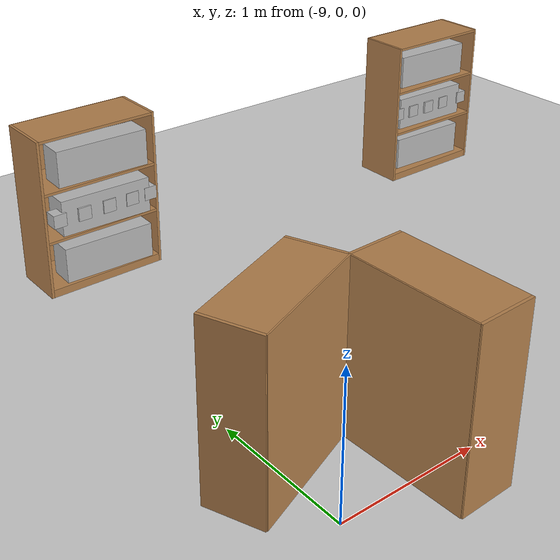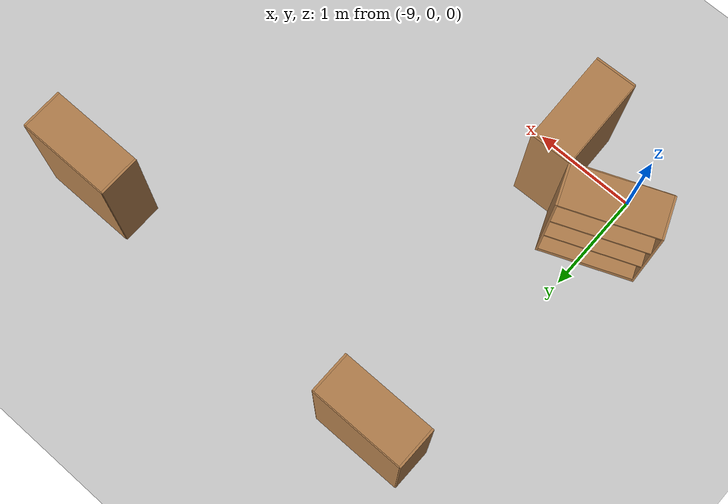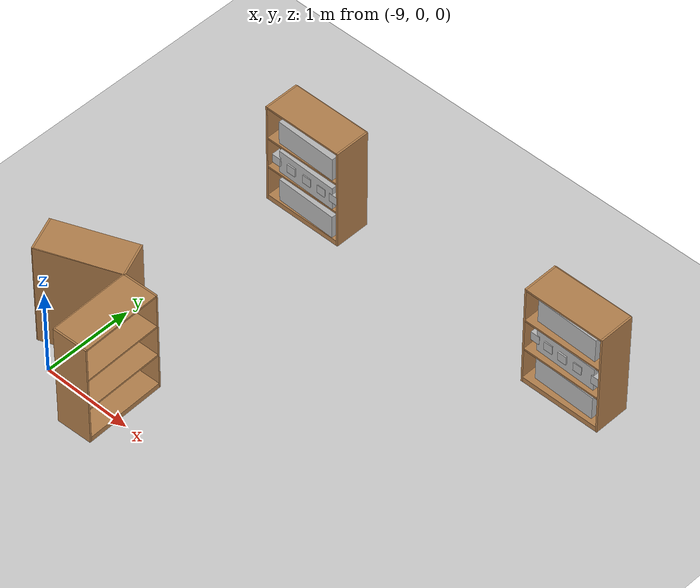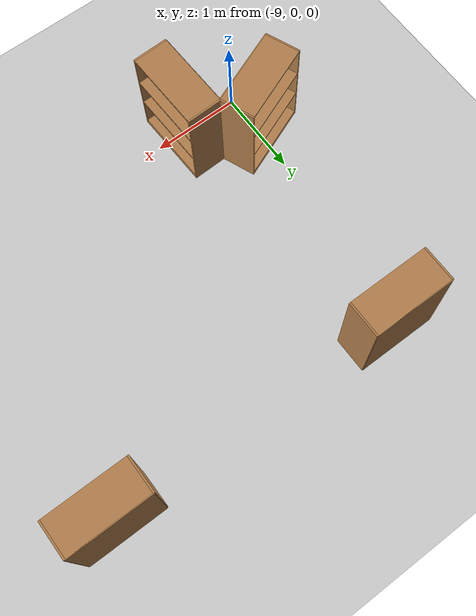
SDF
<sdf version="1.7">
 <world name="default">
  <model name="ground_plane">
   <static>1</static>
   <link name="link">
    <collision name="collision">
     <geometry><plane><normal>0 0 1</normal><size>100 100</size></plane></geometry>
     <surface><friction><ode><mu>100</mu><mu2>50</mu2></ode></friction></surface>
    </collision>
    <visual name="visual">
     <cast_shadows>0</cast_shadows>
     <geometry><plane><normal>0 0 1</normal><size>100 100</size></plane></geometry>
     <material>
      <script><uri>file://media/materials/scripts/gazebo.material</uri><name>Gazebo/Grey</name></script>
     </material>
    </visual>
   </link>
  </model>
  <model name="bookshelf_0">
   <static>1</static>
   <link name="link">
    <inertial><mass>1</mass></inertial>
    <collision name="back">
     <pose>0 0.005 0.6 0 -0 0</pose>
     <geometry><box><size>0.9 0.01 1.2</size></box></geometry>
    </collision>
    <visual name="visual1">
     <pose>0 0.005 0.6 0 -0 0</pose>
     <geometry><box><size>0.9 0.01 1.2</size></box></geometry>
     <material>
      <script><uri>file://media/materials/scripts/gazebo.material</uri><name>Gazebo/Wood</name></script>
     </material>
    </visual>
    <collision name="left_side">
     <pose>0.45 -0.195 0.6 0 -0 0</pose>
     <geometry><box><size>0.02 0.4 1.2</size></box></geometry>
    </collision>
    <visual name="visual2">
     <pose>0.45 -0.195 0.6 0 -0 0</pose>
     <geometry><box><size>0.02 0.4 1.2</size></box></geometry>
     <material>
      <script><uri>file://media/materials/scripts/gazebo.material</uri><name>Gazebo/Wood</name></script>
     </material>
    </visual>
    <collision name="right_side">
     <pose>-0.45 -0.195 0.6 0 -0 0</pose>
     <geometry><box><size>0.02 0.4 1.2</size></box></geometry>
    </collision>
    <visual name="visual3">
     <pose>-0.45 -0.195 0.6 0 -0 0</pose>
     <geometry><box><size>0.02 0.4 1.2</size></box></geometry>
     <material>
      <script><uri>file://media/materials/scripts/gazebo.material</uri><name>Gazebo/Wood</name></script>
     </material>
    </visual>
    <collision name="bottom">
     <pose>0 -0.195 0.03 0 -0 0</pose>
     <geometry><box><size>0.88 0.4 0.06</size></box></geometry>
    </collision>
    <visual name="visual4">
     <pose>0 -0.195 0.03 0 -0 0</pose>
     <geometry><box><size>0.88 0.4 0.06</size></box></geometry>
     <material>
      <script><uri>file://media/materials/scripts/gazebo.material</uri><name>Gazebo/Wood</name></script>
     </material>
    </visual>
    <collision name="top">
     <pose>0 -0.195 1.19 0 -0 0</pose>
     <geometry><box><size>0.88 0.4 0.02</size></box></geometry>
    </collision>
    <visual name="visual5">
     <pose>0 -0.195 1.19 0 -0 0</pose>
     <geometry><box><size>0.88 0.4 0.02</size></box></geometry>
     <material>
      <script><uri>file://media/materials/scripts/gazebo.material</uri><name>Gazebo/Wood</name></script>
     </material>
    </visual>
    <collision name="low_shelf">
     <pose>0 -0.195 0.43 0 -0 0</pose>
     <geometry><box><size>0.88 0.4 0.02</size></box></geometry>
    </collision>
    <visual name="visual6">
     <pose>0 -0.195 0.43 0 -0 0</pose>
     <geometry><box><size>0.88 0.4 0.02</size></box></geometry>
     <material>
      <script><uri>file://media/materials/scripts/gazebo.material</uri><name>Gazebo/Wood</name></script>
     </material>
    </visual>
    <collision name="high_shelf">
     <pose>0 -0.195 0.8 0 -0 0</pose>
     <geometry><box><size>0.88 0.4 0.02</size></box></geometry>
    </collision>
    <visual name="visual7">
     <pose>0 -0.195 0.8 0 -0 0</pose>
     <geometry><box><size>0.88 0.4 0.02</size></box></geometry>
     <material>
      <script><uri>file://media/materials/scripts/gazebo.material</uri><name>Gazebo/Wood</name></script>
     </material>
    </visual>
   </link>
   <pose>-8.64596 3.34342 0 0 -0 0</pose>
  </model>
  <model name="bookshelf_0_clone">
   <static>1</static>
   <link name="link">
    <inertial><mass>1</mass></inertial>
    <collision name="back">
     <pose>0 0.005 0.6 0 -0 0</pose>
     <geometry><box><size>0.9 0.01 1.2</size></box></geometry>
    </collision>
    <visual name="visual1">
     <pose>0 0.005 0.6 0 -0 0</pose>
     <geometry><box><size>0.9 0.01 1.2</size></box></geometry>
     <material>
      <script><uri>file://media/materials/scripts/gazebo.material</uri><name>Gazebo/Wood</name></script>
     </material>
    </visual>
    <collision name="left_side">
     <pose>0.45 -0.195 0.6 0 -0 0</pose>
     <geometry><box><size>0.02 0.4 1.2</size></box></geometry>
    </collision>
    <visual name="visual2">
     <pose>0.45 -0.195 0.6 0 -0 0</pose>
     <geometry><box><size>0.02 0.4 1.2</size></box></geometry>
     <material>
      <script><uri>file://media/materials/scripts/gazebo.material</uri><name>Gazebo/Wood</name></script>
     </material>
    </visual>
    <collision name="right_side">
     <pose>-0.45 -0.195 0.6 0 -0 0</pose>
     <geometry><box><size>0.02 0.4 1.2</size></box></geometry>
    </collision>
    <visual name="visual3">
     <pose>-0.45 -0.195 0.6 0 -0 0</pose>
     <geometry><box><size>0.02 0.4 1.2</size></box></geometry>
     <material>
      <script><uri>file://media/materials/scripts/gazebo.material</uri><name>Gazebo/Wood</name></script>
     </material>
    </visual>
    <collision name="bottom">
     <pose>0 -0.195 0.03 0 -0 0</pose>
     <geometry><box><size>0.88 0.4 0.06</size></box></geometry>
    </collision>
    <visual name="visual4">
     <pose>0 -0.195 0.03 0 -0 0</pose>
     <geometry><box><size>0.88 0.4 0.06</size></box></geometry>
     <material>
      <script><uri>file://media/materials/scripts/gazebo.material</uri><name>Gazebo/Wood</name></script>
     </material>
    </visual>
    <collision name="top">
     <pose>0 -0.195 1.19 0 -0 0</pose>
     <geometry><box><size>0.88 0.4 0.02</size></box></geometry>
    </collision>
    <visual name="visual5">
     <pose>0 -0.195 1.19 0 -0 0</pose>
     <geometry><box><size>0.88 0.4 0.02</size></box></geometry>
     <material>
      <script><uri>file://media/materials/scripts/gazebo.material</uri><name>Gazebo/Wood</name></script>
     </material>
    </visual>
    <collision name="low_shelf">
     <pose>0 -0.195 0.43 0 -0 0</pose>
     <geometry><box><size>0.88 0.4 0.02</size></box></geometry>
    </collision>
    <visual name="visual6">
     <pose>0 -0.195 0.43 0 -0 0</pose>
     <geometry><box><size>0.88 0.4 0.02</size></box></geometry>
     <material>
      <script><uri>file://media/materials/scripts/gazebo.material</uri><name>Gazebo/Wood</name></script>
     </material>
    </visual>
    <collision name="high_shelf">
     <pose>0 -0.195 0.8 0 -0 0</pose>
     <geometry><box><size>0.88 0.4 0.02</size></box></geometry>
    </collision>
    <visual name="visual7">
     <pose>0 -0.195 0.8 0 -0 0</pose>
     <geometry><box><size>0.88 0.4 0.02</size></box></geometry>
     <material>
      <script><uri>file://media/materials/scripts/gazebo.material</uri><name>Gazebo/Wood</name></script>
     </material>
    </visual>
   </link>
   <pose>-5.35741 3.26655 0 0 -0 0</pose>
  </model>
  <model name="bookshelf_clone_clone_clone_1_clone_0_clone_2">
   <static>1</static>
   <link name="link">
    <inertial><mass>1</mass></inertial>
    <collision name="back">
     <pose>0 0.005 0.6 0 -0 0</pose>
     <geometry><box><size>0.9 0.01 1.2</size></box></geometry>
    </collision>
    <visual name="visual1">
     <pose>0 0.005 0.6 0 -0 0</pose>
     <geometry><box><size>0.9 0.01 1.2</size></box></geometry>
     <material>
      <script><uri>file://media/materials/scripts/gazebo.material</uri><name>Gazebo/Wood</name></script>
     </material>
    </visual>
    <collision name="left_side">
     <pose>0.45 -0.195 0.6 0 -0 0</pose>
     <geometry><box><size>0.02 0.4 1.2</size></box></geometry>
    </collision>
    <visual name="visual2">
     <pose>0.45 -0.195 0.6 0 -0 0</pose>
     <geometry><box><size>0.02 0.4 1.2</size></box></geometry>
     <material>
      <script><uri>file://media/materials/scripts/gazebo.material</uri><name>Gazebo/Wood</name></script>
     </material>
    </visual>
    <collision name="right_side">
     <pose>-0.45 -0.195 0.6 0 -0 0</pose>
     <geometry><box><size>0.02 0.4 1.2</size></box></geometry>
    </collision>
    <visual name="visual3">
     <pose>-0.45 -0.195 0.6 0 -0 0</pose>
     <geometry><box><size>0.02 0.4 1.2</size></box></geometry>
     <material>
      <script><uri>file://media/materials/scripts/gazebo.material</uri><name>Gazebo/Wood</name></script>
     </material>
    </visual>
    <collision name="bottom">
     <pose>0 -0.195 0.03 0 -0 0</pose>
     <geometry><box><size>0.88 0.4 0.06</size></box></geometry>
    </collision>
    <visual name="visual4">
     <pose>0 -0.195 0.03 0 -0 0</pose>
     <geometry><box><size>0.88 0.4 0.06</size></box></geometry>
     <material>
      <script><uri>file://media/materials/scripts/gazebo.material</uri><name>Gazebo/Wood</name></script>
     </material>
    </visual>
    <collision name="top">
     <pose>0 -0.195 1.19 0 -0 0</pose>
     <geometry><box><size>0.88 0.4 0.02</size></box></geometry>
    </collision>
    <visual name="visual5">
     <pose>0 -0.195 1.19 0 -0 0</pose>
     <geometry><box><size>0.88 0.4 0.02</size></box></geometry>
     <material>
      <script><uri>file://media/materials/scripts/gazebo.material</uri><name>Gazebo/Wood</name></script>
     </material>
    </visual>
    <collision name="low_shelf">
     <pose>0 -0.195 0.43 0 -0 0</pose>
     <geometry><box><size>0.88 0.4 0.02</size></box></geometry>
    </collision>
    <visual name="visual6">
     <pose>0 -0.195 0.43 0 -0 0</pose>
     <geometry><box><size>0.88 0.4 0.02</size></box></geometry>
     <material>
      <script><uri>file://media/materials/scripts/gazebo.material</uri><name>Gazebo/Wood</name></script>
     </material>
    </visual>
    <collision name="high_shelf">
     <pose>0 -0.195 0.8 0 -0 0</pose>
     <geometry><box><size>0.88 0.4 0.02</size></box></geometry>
    </collision>
    <visual name="visual7">
     <pose>0 -0.195 0.8 0 -0 0</pose>
     <geometry><box><size>0.88 0.4 0.02</size></box></geometry>
     <material>
      <script><uri>file://media/materials/scripts/gazebo.material</uri><name>Gazebo/Wood</name></script>
     </material>
    </visual>
   </link>
   <pose>-8.49326 0.08209 0.012624 0 -0 1.60042</pose>
  </model>
  <model name="bookshelf_clone_clone_clone_1_clone_0_clone_3">
   <static>1</static>
   <link name="link">
    <inertial><mass>1</mass></inertial>
    <collision name="back">
     <pose>0 0.005 0.6 0 -0 0</pose>
     <geometry><box><size>0.9 0.01 1.2</size></box></geometry>
    </collision>
    <visual name="visual1">
     <pose>0 0.005 0.6 0 -0 0</pose>
     <geometry><box><size>0.9 0.01 1.2</size></box></geometry>
     <material>
      <script><uri>file://media/materials/scripts/gazebo.material</uri><name>Gazebo/Wood</name></script>
     </material>
    </visual>
    <collision name="left_side">
     <pose>0.45 -0.195 0.6 0 -0 0</pose>
     <geometry><box><size>0.02 0.4 1.2</size></box></geometry>
    </collision>
    <visual name="visual2">
     <pose>0.45 -0.195 0.6 0 -0 0</pose>
     <geometry><box><size>0.02 0.4 1.2</size></box></geometry>
     <material>
      <script><uri>file://media/materials/scripts/gazebo.material</uri><name>Gazebo/Wood</name></script>
     </material>
    </visual>
    <collision name="right_side">
     <pose>-0.45 -0.195 0.6 0 -0 0</pose>
     <geometry><box><size>0.02 0.4 1.2</size></box></geometry>
    </collision>
    <visual name="visual3">
     <pose>-0.45 -0.195 0.6 0 -0 0</pose>
     <geometry><box><size>0.02 0.4 1.2</size></box></geometry>
     <material>
      <script><uri>file://media/materials/scripts/gazebo.material</uri><name>Gazebo/Wood</name></script>
     </material>
    </visual>
    <collision name="bottom">
     <pose>0 -0.195 0.03 0 -0 0</pose>
     <geometry><box><size>0.88 0.4 0.06</size></box></geometry>
    </collision>
    <visual name="visual4">
     <pose>0 -0.195 0.03 0 -0 0</pose>
     <geometry><box><size>0.88 0.4 0.06</size></box></geometry>
     <material>
      <script><uri>file://media/materials/scripts/gazebo.material</uri><name>Gazebo/Wood</name></script>
     </material>
    </visual>
    <collision name="top">
     <pose>0 -0.195 1.19 0 -0 0</pose>
     <geometry><box><size>0.88 0.4 0.02</size></box></geometry>
    </collision>
    <visual name="visual5">
     <pose>0 -0.195 1.19 0 -0 0</pose>
     <geometry><box><size>0.88 0.4 0.02</size></box></geometry>
     <material>
      <script><uri>file://media/materials/scripts/gazebo.material</uri><name>Gazebo/Wood</name></script>
     </material>
    </visual>
    <collision name="low_shelf">
     <pose>0 -0.195 0.43 0 -0 0</pose>
     <geometry><box><size>0.88 0.4 0.02</size></box></geometry>
    </collision>
    <visual name="visual6">
     <pose>0 -0.195 0.43 0 -0 0</pose>
     <geometry><box><size>0.88 0.4 0.02</size></box></geometry>
     <material>
      <script><uri>file://media/materials/scripts/gazebo.material</uri><name>Gazebo/Wood</name></script>
     </material>
    </visual>
    <collision name="high_shelf">
     <pose>0 -0.195 0.8 0 -0 0</pose>
     <geometry><box><size>0.88 0.4 0.02</size></box></geometry>
    </collision>
    <visual name="visual7">
     <pose>0 -0.195 0.8 0 -0 0</pose>
     <geometry><box><size>0.88 0.4 0.02</size></box></geometry>
     <material>
      <script><uri>file://media/materials/scripts/gazebo.material</uri><name>Gazebo/Wood</name></script>
     </material>
    </visual>
   </link>
   <pose>-8.92253 0.361108 0.012624 0 0 -2.75538</pose>
  </model>
  <model name="book1.xacro">
   <link name="base_footprint">
    <inertial>
     <pose>1 1 1.5 0 -0 0</pose>
     <mass>6</mass>
     <inertia><ixx>0.7503</ixx><ixy>0</ixy><ixz>0</ixz><iyy>0.7503</iyy><iyz>0</iyz><izz>0.003</izz></inertia>
    </inertial>
    <collision name="base_footprint_fixed_joint_lump__base_link_collision">
     <pose>1 1 1 0 -0 0</pose>
     <geometry><box><size>0.7 0.2 0.27</size></box></geometry>
    </collision>
    <collision name="base_footprint_fixed_joint_lump__book_link_2_collision_1">
     <pose>1 1 1.375 0 -0 0</pose>
     <geometry><box><size>0.7 0.2 0.27</size></box></geometry>
    </collision>
    <collision name="base_footprint_fixed_joint_lump__book_link_3_collision_2">
     <pose>1 1 1.75 0 -0 0</pose>
     <geometry><box><size>0.7 0.2 0.27</size></box></geometry>
    </collision>
    <visual name="base_footprint_fixed_joint_lump__base_link_visual">
     <pose>1 1 1 0 -0 0</pose>
     <geometry><box><size>0.7 0.2 0.27</size></box></geometry>
    </visual>
    <visual name="base_footprint_fixed_joint_lump__book_link_2_visual_1">
     <pose>1 1 1.375 0 -0 0</pose>
     <geometry><box><size>0.7 0.2 0.27</size></box></geometry>
    </visual>
    <visual name="base_footprint_fixed_joint_lump__book_link_3_visual_2">
     <pose>1 1 1.75 0 -0 0</pose>
     <geometry><box><size>0.7 0.2 0.27</size></box></geometry>
    </visual>
   </link>
   <frame name="book_joint_2" attached_to="base_link"><pose>0 0 0.375 0 -0 0</pose></frame>
   <frame name="book_link_2" attached_to="book_joint_2"/>
   <frame name="book_joint_3" attached_to="base_link"><pose>0 0 0.75 0 -0 0</pose></frame>
   <frame name="book_link_3" attached_to="book_joint_3"/>
   <frame name="base_joint" attached_to="base_footprint"><pose>1 1 1 0 -0 0</pose></frame>
   <frame name="base_link" attached_to="base_joint"/>
   <pose>-9.6356 2.09093 -0.8 -0 -0 -0.03072</pose>
  </model>
  <model name="book1.xacro_clone">
   <link name="base_footprint">
    <inertial>
     <pose>1 1 1.5 0 -0 0</pose>
     <mass>6</mass>
     <inertia><ixx>0.7503</ixx><ixy>0</ixy><ixz>0</ixz><iyy>0.7503</iyy><iyz>0</iyz><izz>0.003</izz></inertia>
    </inertial>
    <collision name="base_footprint_fixed_joint_lump__base_link_collision">
     <pose>1 1 1 0 -0 0</pose>
     <geometry><box><size>0.7 0.2 0.27</size></box></geometry>
    </collision>
    <collision name="base_footprint_fixed_joint_lump__book_link_2_collision_1">
     <pose>1 1 1.375 0 -0 0</pose>
     <geometry><box><size>0.7 0.2 0.27</size></box></geometry>
    </collision>
    <collision name="base_footprint_fixed_joint_lump__book_link_3_collision_2">
     <pose>1 1 1.75 0 -0 0</pose>
     <geometry><box><size>0.7 0.2 0.27</size></box></geometry>
    </collision>
    <visual name="base_footprint_fixed_joint_lump__base_link_visual">
     <pose>1 1 1 0 -0 0</pose>
     <geometry><box><size>0.7 0.2 0.27</size></box></geometry>
    </visual>
    <visual name="base_footprint_fixed_joint_lump__book_link_2_visual_1">
     <pose>1 1 1.375 0 -0 0</pose>
     <geometry><box><size>0.7 0.2 0.27</size></box></geometry>
    </visual>
    <visual name="base_footprint_fixed_joint_lump__book_link_3_visual_2">
     <pose>1 1 1.75 0 -0 0</pose>
     <geometry><box><size>0.7 0.2 0.27</size></box></geometry>
    </visual>
   </link>
   <frame name="book_joint_2" attached_to="base_link"><pose>0 0 0.375 0 -0 0</pose></frame>
   <frame name="book_link_2" attached_to="book_joint_2"/>
   <frame name="book_joint_3" attached_to="base_link"><pose>0 0 0.75 0 -0 0</pose></frame>
   <frame name="book_link_3" attached_to="book_joint_3"/>
   <frame name="base_joint" attached_to="base_footprint"><pose>1 1 1 0 -0 0</pose></frame>
   <frame name="base_link" attached_to="base_joint"/>
   <pose>-6.38357 2.05916 -0.8 -0 -0 -0.03072</pose>
  </model>
  <model name="A_0">
   <static>1</static>
   <link name="link">
    <pose>0 0 0.58 1.57 -0 0</pose>
    <inertial>
     <mass>0.1</mass>
     <inertia><ixx>0.00058</ixx><ixy>0</ixy><ixz>0</ixz><iyy>0.00058</iyy><iyz>0</iyz><izz>0.00019</izz></inertia>
    </inertial>
    <collision name="collision"><geometry><box><size>0 0 0</size></box></geometry></collision>
    <visual name="visual">
     <geometry><box><size>0.1 0.1 0.1</size></box></geometry>
     <material>
      <script>
       <uri>model://A/materials/scripts</uri>
       <uri>model://A/materials/textures</uri>
       <name>A/Diffuse</name>
      </script>
     </material>
    </visual>
   </link>
   <pose>-8.5888 2.99894 -0 0 -0 0</pose>
  </model>
  <model name="A1">
   <static>1</static>
   <link name="link">
    <pose>0 0 0.58 1.57 -0 0</pose>
    <inertial>
     <mass>0.1</mass>
     <inertia><ixx>0.00058</ixx><ixy>0</ixy><ixz>0</ixz><iyy>0.00058</iyy><iyz>0</iyz><izz>0.00019</izz></inertia>
    </inertial>
    <collision name="collision"><geometry><box><size>0 0 0</size></box></geometry></collision>
    <visual name="visual">
     <geometry><box><size>0.1 0.1 0.1</size></box></geometry>
     <material>
      <script>
       <uri>model://A1/materials/scripts</uri>
       <uri>model://A1/materials/textures</uri>
       <name>A1/Diffuse</name>
      </script>
     </material>
    </visual>
   </link>
   <pose>-8.78822 2.99978 -0 0 -0 0</pose>
  </model>
  <model name="A2">
   <static>1</static>
   <link name="link">
    <pose>0 0 0.58 1.57 -0 0</pose>
    <inertial>
     <mass>0.1</mass>
     <inertia><ixx>0.00058</ixx><ixy>0</ixy><ixz>0</ixz><iyy>0.00058</iyy><iyz>0</iyz><izz>0.00019</izz></inertia>
    </inertial>
    <collision name="collision"><geometry><box><size>0 0 0</size></box></geometry></collision>
    <visual name="visual">
     <geometry><box><size>0.1 0.1 0.1</size></box></geometry>
     <material>
      <script>
       <uri>model://A2/materials/scripts</uri>
       <uri>model://A2/materials/textures</uri>
       <name>A2/Diffuse</name>
      </script>
     </material>
    </visual>
   </link>
   <pose>-8.4005 2.99868 -0 0 -0 0</pose>
  </model>
  <model name="B">
   <static>1</static>
   <link name="link">
    <pose>0 0 0.58 1.57 -0 0</pose>
    <inertial>
     <mass>0.1</mass>
     <inertia><ixx>0.00058</ixx><ixy>0</ixy><ixz>0</ixz><iyy>0.00058</iyy><iyz>0</iyz><izz>0.00019</izz></inertia>
    </inertial>
    <collision name="collision"><geometry><box><size>0 0 0</size></box></geometry></collision>
    <visual name="visual">
     <geometry><box><size>0.1 0.1 0.1</size></box></geometry>
     <material>
      <script>
       <uri>model://B/materials/scripts</uri>
       <uri>model://B/materials/textures</uri>
       <name>B/Diffuse</name>
      </script>
     </material>
    </visual>
   </link>
   <pose>-8.98231 3.00175 -0 0 -0 0</pose>
  </model>
  <model name="B1">
   <static>1</static>
   <link name="link">
    <pose>0 0 0.58 1.57 -0 0</pose>
    <inertial>
     <mass>0.1</mass>
     <inertia><ixx>0.00058</ixx><ixy>0</ixy><ixz>0</ixz><iyy>0.00058</iyy><iyz>0</iyz><izz>0.00019</izz></inertia>
    </inertial>
    <collision name="collision"><geometry><box><size>0 0 0</size></box></geometry></collision>
    <visual name="visual">
     <geometry><box><size>0.1 0.1 0.1</size></box></geometry>
     <material>
      <script>
       <uri>model://B1/materials/scripts</uri>
       <uri>model://B1/materials/textures</uri>
       <name>B1/Diffuse</name>
      </script>
     </material>
    </visual>
   </link>
   <pose>-8.2479 2.99736 -0 0 -0 0</pose>
  </model>
  <model name="B2">
   <static>1</static>
   <link name="link">
    <pose>0 0 0.58 1.57 -0 0</pose>
    <inertial>
     <mass>0.1</mass>
     <inertia><ixx>0.00058</ixx><ixy>0</ixy><ixz>0</ixz><iyy>0.00058</iyy><iyz>0</iyz><izz>0.00019</izz></inertia>
    </inertial>
    <collision name="collision"><geometry><box><size>0 0 0</size></box></geometry></collision>
    <visual name="visual">
     <geometry><box><size>0.1 0.1 0.1</size></box></geometry>
     <material>
      <script>
       <uri>model://B2/materials/scripts</uri>
       <uri>model://B2/materials/textures</uri>
       <name>B2/Diffuse</name>
      </script>
     </material>
    </visual>
   </link>
   <pose>-5.72347 2.98205 -0 0 -0 0</pose>
  </model>
  <model name="B3">
   <static>1</static>
   <link name="link">
    <pose>0 0 0.58 1.57 -0 0</pose>
    <inertial>
     <mass>0.1</mass>
     <inertia><ixx>0.00058</ixx><ixy>0</ixy><ixz>0</ixz><iyy>0.00058</iyy><iyz>0</iyz><izz>0.00019</izz></inertia>
    </inertial>
    <collision name="collision"><geometry><box><size>0 0 0</size></box></geometry></collision>
    <visual name="visual">
     <geometry><box><size>0.1 0.1 0.1</size></box></geometry>
     <material>
      <script>
       <uri>model://B3/materials/scripts</uri>
       <uri>model://B3/materials/textures</uri>
       <name>B3/Diffuse</name>
      </script>
     </material>
    </visual>
   </link>
   <pose>-4.9821 2.95775 -0 0 -0 0</pose>
  </model>
  <model name="A3">
   <static>1</static>
   <link name="link">
    <pose>0 0 0.58 1.57 -0 0</pose>
    <inertial>
     <mass>0.1</mass>
     <inertia><ixx>0.00058</ixx><ixy>0</ixy><ixz>0</ixz><iyy>0.00058</iyy><iyz>0</iyz><izz>0.00019</izz></inertia>
    </inertial>
    <collision name="collision"><geometry><box><size>0 0 0</size></box></geometry></collision>
    <visual name="visual">
     <geometry><box><size>0.1 0.1 0.1</size></box></geometry>
     <material>
      <script>
       <uri>model://A3/materials/scripts</uri>
       <uri>model://A3/materials/textures</uri>
       <name>A3/Diffuse</name>
      </script>
     </material>
    </visual>
   </link>
   <pose>-5.55986 2.97283 -0 0 -0 0</pose>
  </model>
  <model name="A4">
   <static>1</static>
   <link name="link">
    <pose>0 0 0.58 1.57 -0 0</pose>
    <inertial>
     <mass>0.1</mass>
     <inertia><ixx>0.00058</ixx><ixy>0</ixy><ixz>0</ixz><iyy>0.00058</iyy><iyz>0</iyz><izz>0.00019</izz></inertia>
    </inertial>
    <collision name="collision"><geometry><box><size>0 0 0</size></box></geometry></collision>
    <visual name="visual">
     <geometry><box><size>0.1 0.1 0.1</size></box></geometry>
     <material>
      <script>
       <uri>model://A4/materials/scripts</uri>
       <uri>model://A4/materials/textures</uri>
       <name>A4/Diffuse</name>
      </script>
     </material>
    </visual>
   </link>
   <pose>-5.38449 2.96238 -0 0 -0 0</pose>
  </model>
  <model name="A5">
   <static>1</static>
   <link name="link">
    <pose>0 0 0.58 1.57 -0 0</pose>
    <inertial>
     <mass>0.1</mass>
     <inertia><ixx>0.00058</ixx><ixy>0</ixy><ixz>0</ixz><iyy>0.00058</iyy><iyz>0</iyz><izz>0.00019</izz></inertia>
    </inertial>
    <collision name="collision"><geometry><box><size>0 0 0</size></box></geometry></collision>
    <visual name="visual">
     <geometry><box><size>0.1 0.1 0.1</size></box></geometry>
     <material>
      <script>
       <uri>model://A5/materials/scripts</uri>
       <uri>model://A5/materials/textures</uri>
       <name>A5/Diffuse</name>
      </script>
     </material>
    </visual>
   </link>
   <pose>-5.20221 2.96415 -0 0 -0 0</pose>
  </model>
 </world>
</sdf>
